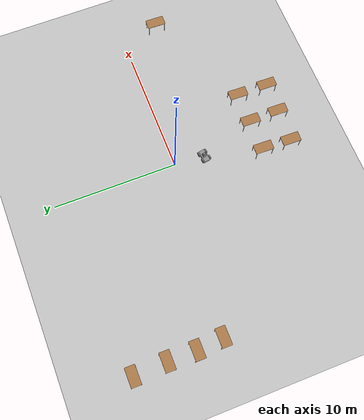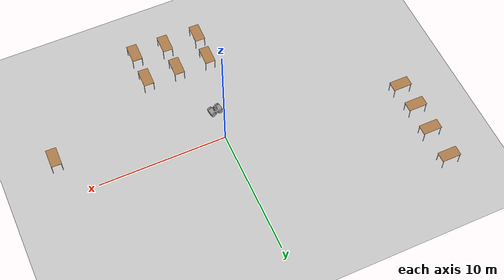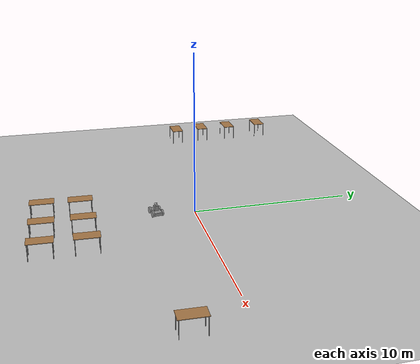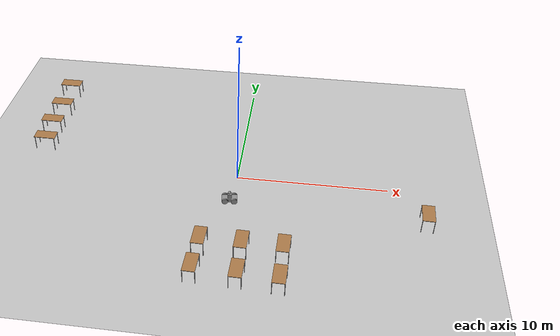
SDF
<sdf version="1.6">
 <world name="default">
  <model name="ground_plane">
   <static>1</static>
   <link name="link">
    <collision name="collision">
     <geometry><plane><normal>0 0 1</normal><size>100 100</size></plane></geometry>
     <surface>
      <contact><collide_bitmask>65535</collide_bitmask></contact>
      <friction><ode><mu>100</mu><mu2>50</mu2></ode></friction>
     </surface>
    </collision>
    <visual name="visual">
     <cast_shadows>0</cast_shadows>
     <geometry><plane><normal>0 0 1</normal><size>100 100</size></plane></geometry>
     <material>
      <script><uri>file://media/materials/scripts/gazebo.material</uri><name>Gazebo/Grey</name></script>
     </material>
    </visual>
   </link>
  </model>
  <model name="robot_clone">
   <link name="link_0">
    <pose>0 0 -0.109999 0 -0 0</pose>
    <inertial>
     <mass>1</mass>
     <inertia>
      <ixx>0.166667</ixx>
      <ixy>0</ixy>
      <ixz>0</ixz>
      <iyy>0.166667</iyy>
      <iyz>0</iyz>
      <izz>0.166667</izz>
     </inertia>
    </inertial>
    <visual name="visual">
     <geometry><box><size>1 0.5 0.2</size></box></geometry>
     <material>
      <lighting>1</lighting>
      <script><uri>file://media/materials/scripts/gazebo.material</uri><name>Gazebo/Grey</name></script>
      <shader type="pixel"><normal_map>__default__</normal_map></shader>
      <ambient>0.3 0.3 0.3 1</ambient>
      <diffuse>0.7 0.7 0.7 1</diffuse>
      <specular>0.01 0.01 0.01 1</specular>
      <emissive>0 0 0 1</emissive>
     </material>
    </visual>
    <collision name="collision">
     <geometry><box><size>1 0.5 0.2</size></box></geometry>
     <surface>
      <friction>
       <ode><mu>1</mu><mu2>1</mu2><fdir1>0 0 0</fdir1><slip1>0</slip1><slip2>0</slip2></ode>
       <torsional>
        <coefficient>1</coefficient>
        <patch_radius>0</patch_radius>
        <surface_radius>0</surface_radius>
        <use_patch_radius>1</use_patch_radius>
        <ode><slip>0</slip></ode>
       </torsional>
      </friction>
      <bounce><restitution_coefficient>0</restitution_coefficient><threshold>1e+06</threshold></bounce>
      <contact>
       <collide_without_contact>0</collide_without_contact>
       <collide_without_contact_bitmask>1</collide_without_contact_bitmask>
       <collide_bitmask>1</collide_bitmask>
       <ode>
        <soft_cfm>0</soft_cfm>
        <soft_erp>0.2</soft_erp>
        <kp>1e+13</kp>
        <kd>1</kd>
        <max_vel>0.01</max_vel>
        <min_depth>0</min_depth>
       </ode>
       <bullet>
        <split_impulse>1</split_impulse>
        <split_impulse_penetration_threshold>-0.01</split_impulse_penetration_threshold>
        <soft_cfm>0</soft_cfm>
        <soft_erp>0.2</soft_erp>
        <kp>1e+13</kp>
        <kd>1</kd>
       </bullet>
      </contact>
     </surface>
    </collision>
   </link>
   <link name="link_1">
    <pose>-0.3 -0.300019 -0.090004 1.5707 -0 0</pose>
    <inertial>
     <mass>1</mass>
     <inertia><ixx>0.145833</ixx><ixy>0</ixy><ixz>0</ixz><iyy>0.145833</iyy><iyz>0</iyz><izz>0.125</izz></inertia>
    </inertial>
    <visual name="visual">
     <geometry><cylinder><radius>0.2</radius><length>0.1</length></cylinder></geometry>
     <material>
      <lighting>1</lighting>
      <script><uri>file://media/materials/scripts/gazebo.material</uri><name>Gazebo/Grey</name></script>
      <shader type="pixel"><normal_map>__default__</normal_map></shader>
      <ambient>0.3 0.3 0.3 1</ambient>
      <diffuse>0.7 0.7 0.7 1</diffuse>
      <specular>0.01 0.01 0.01 1</specular>
      <emissive>0 0 0 1</emissive>
     </material>
    </visual>
    <collision name="collision">
     <geometry><cylinder><radius>0.2</radius><length>0.1</length></cylinder></geometry>
     <surface>
      <friction>
       <ode><mu>1</mu><mu2>1</mu2><fdir1>0 0 0</fdir1><slip1>0</slip1><slip2>0</slip2></ode>
       <torsional>
        <coefficient>1</coefficient>
        <patch_radius>0</patch_radius>
        <surface_radius>0</surface_radius>
        <use_patch_radius>1</use_patch_radius>
        <ode><slip>0</slip></ode>
       </torsional>
      </friction>
      <bounce><restitution_coefficient>0</restitution_coefficient><threshold>1e+06</threshold></bounce>
      <contact>
       <collide_without_contact>0</collide_without_contact>
       <collide_without_contact_bitmask>1</collide_without_contact_bitmask>
       <collide_bitmask>1</collide_bitmask>
       <ode>
        <soft_cfm>0</soft_cfm>
        <soft_erp>0.2</soft_erp>
        <kp>1e+13</kp>
        <kd>1</kd>
        <max_vel>0.01</max_vel>
        <min_depth>0</min_depth>
       </ode>
       <bullet>
        <split_impulse>1</split_impulse>
        <split_impulse_penetration_threshold>-0.01</split_impulse_penetration_threshold>
        <soft_cfm>0</soft_cfm>
        <soft_erp>0.2</soft_erp>
        <kp>1e+13</kp>
        <kd>1</kd>
       </bullet>
      </contact>
     </surface>
    </collision>
   </link>
   <link name="link_1_clone">
    <pose>-0.3 0.300019 -0.109999 1.5707 -0 0</pose>
    <inertial>
     <mass>1</mass>
     <inertia><ixx>0.145833</ixx><ixy>0</ixy><ixz>0</ixz><iyy>0.145833</iyy><iyz>0</iyz><izz>0.125</izz></inertia>
    </inertial>
    <visual name="visual">
     <geometry><cylinder><radius>0.2</radius><length>0.1</length></cylinder></geometry>
     <material>
      <lighting>1</lighting>
      <script><uri>file://media/materials/scripts/gazebo.material</uri><name>Gazebo/Grey</name></script>
      <shader type="pixel"><normal_map>__default__</normal_map></shader>
      <ambient>0.3 0.3 0.3 1</ambient>
      <diffuse>0.7 0.7 0.7 1</diffuse>
      <specular>0.01 0.01 0.01 1</specular>
      <emissive>0 0 0 1</emissive>
     </material>
    </visual>
    <collision name="collision">
     <geometry><cylinder><radius>0.2</radius><length>0.1</length></cylinder></geometry>
     <surface>
      <friction>
       <ode><mu>1</mu><mu2>1</mu2><fdir1>0 0 0</fdir1><slip1>0</slip1><slip2>0</slip2></ode>
       <torsional>
        <coefficient>1</coefficient>
        <patch_radius>0</patch_radius>
        <surface_radius>0</surface_radius>
        <use_patch_radius>1</use_patch_radius>
        <ode><slip>0</slip></ode>
       </torsional>
      </friction>
      <bounce><restitution_coefficient>0</restitution_coefficient><threshold>1e+06</threshold></bounce>
      <contact>
       <collide_without_contact>0</collide_without_contact>
       <collide_without_contact_bitmask>1</collide_without_contact_bitmask>
       <collide_bitmask>1</collide_bitmask>
       <ode>
        <soft_cfm>0</soft_cfm>
        <soft_erp>0.2</soft_erp>
        <kp>1e+13</kp>
        <kd>1</kd>
        <max_vel>0.01</max_vel>
        <min_depth>0</min_depth>
       </ode>
       <bullet>
        <split_impulse>1</split_impulse>
        <split_impulse_penetration_threshold>-0.01</split_impulse_penetration_threshold>
        <soft_cfm>0</soft_cfm>
        <soft_erp>0.2</soft_erp>
        <kp>1e+13</kp>
        <kd>1</kd>
       </bullet>
      </contact>
     </surface>
    </collision>
   </link>
   <link name="link_1_clone_clone">
    <pose>0.3 -0.300019 -0.109999 1.5707 -0 0</pose>
    <inertial>
     <mass>1</mass>
     <inertia><ixx>0.145833</ixx><ixy>0</ixy><ixz>0</ixz><iyy>0.145833</iyy><iyz>0</iyz><izz>0.125</izz></inertia>
    </inertial>
    <visual name="visual">
     <geometry><cylinder><radius>0.2</radius><length>0.1</length></cylinder></geometry>
     <material>
      <lighting>1</lighting>
      <script><uri>file://media/materials/scripts/gazebo.material</uri><name>Gazebo/Grey</name></script>
      <shader type="pixel"><normal_map>__default__</normal_map></shader>
      <ambient>0.3 0.3 0.3 1</ambient>
      <diffuse>0.7 0.7 0.7 1</diffuse>
      <specular>0.01 0.01 0.01 1</specular>
      <emissive>0 0 0 1</emissive>
     </material>
    </visual>
    <collision name="collision">
     <geometry><cylinder><radius>0.2</radius><length>0.1</length></cylinder></geometry>
     <surface>
      <friction>
       <ode><mu>1</mu><mu2>1</mu2><fdir1>0 0 0</fdir1><slip1>0</slip1><slip2>0</slip2></ode>
       <torsional>
        <coefficient>1</coefficient>
        <patch_radius>0</patch_radius>
        <surface_radius>0</surface_radius>
        <use_patch_radius>1</use_patch_radius>
        <ode><slip>0</slip></ode>
       </torsional>
      </friction>
      <bounce><restitution_coefficient>0</restitution_coefficient><threshold>1e+06</threshold></bounce>
      <contact>
       <collide_without_contact>0</collide_without_contact>
       <collide_without_contact_bitmask>1</collide_without_contact_bitmask>
       <collide_bitmask>1</collide_bitmask>
       <ode>
        <soft_cfm>0</soft_cfm>
        <soft_erp>0.2</soft_erp>
        <kp>1e+13</kp>
        <kd>1</kd>
        <max_vel>0.01</max_vel>
        <min_depth>0</min_depth>
       </ode>
       <bullet>
        <split_impulse>1</split_impulse>
        <split_impulse_penetration_threshold>-0.01</split_impulse_penetration_threshold>
        <soft_cfm>0</soft_cfm>
        <soft_erp>0.2</soft_erp>
        <kp>1e+13</kp>
        <kd>1</kd>
       </bullet>
      </contact>
     </surface>
    </collision>
   </link>
   <link name="link_1_clone_clone_clone">
    <pose>0.3 0.300019 -0.109999 1.5707 -0 0</pose>
    <inertial>
     <mass>1</mass>
     <inertia><ixx>0.145833</ixx><ixy>0</ixy><ixz>0</ixz><iyy>0.145833</iyy><iyz>0</iyz><izz>0.125</izz></inertia>
    </inertial>
    <visual name="visual">
     <geometry><cylinder><radius>0.2</radius><length>0.1</length></cylinder></geometry>
     <material>
      <lighting>1</lighting>
      <script><uri>file://media/materials/scripts/gazebo.material</uri><name>Gazebo/Grey</name></script>
      <shader type="pixel"><normal_map>__default__</normal_map></shader>
      <ambient>0.3 0.3 0.3 1</ambient>
      <diffuse>0.7 0.7 0.7 1</diffuse>
      <specular>0.01 0.01 0.01 1</specular>
      <emissive>0 0 0 1</emissive>
     </material>
    </visual>
    <collision name="collision">
     <geometry><cylinder><radius>0.2</radius><length>0.1</length></cylinder></geometry>
     <surface>
      <friction>
       <ode><mu>1</mu><mu2>1</mu2><fdir1>0 0 0</fdir1><slip1>0</slip1><slip2>0</slip2></ode>
       <torsional>
        <coefficient>1</coefficient>
        <patch_radius>0</patch_radius>
        <surface_radius>0</surface_radius>
        <use_patch_radius>1</use_patch_radius>
        <ode><slip>0</slip></ode>
       </torsional>
      </friction>
      <bounce><restitution_coefficient>0</restitution_coefficient><threshold>1e+06</threshold></bounce>
      <contact>
       <collide_without_contact>0</collide_without_contact>
       <collide_without_contact_bitmask>1</collide_without_contact_bitmask>
       <collide_bitmask>1</collide_bitmask>
       <ode>
        <soft_cfm>0</soft_cfm>
        <soft_erp>0.2</soft_erp>
        <kp>1e+13</kp>
        <kd>1</kd>
        <max_vel>0.01</max_vel>
        <min_depth>0</min_depth>
       </ode>
       <bullet>
        <split_impulse>1</split_impulse>
        <split_impulse_penetration_threshold>-0.01</split_impulse_penetration_threshold>
        <soft_cfm>0</soft_cfm>
        <soft_erp>0.2</soft_erp>
        <kp>1e+13</kp>
        <kd>1</kd>
       </bullet>
      </contact>
     </surface>
    </collision>
   </link>
   <link name="link_2">
    <pose>-0 0 0.140001 0 -0 0</pose>
    <inertial>
     <mass>1</mass>
     <inertia>
      <ixx>0.166667</ixx>
      <ixy>0</ixy>
      <ixz>0</ixz>
      <iyy>0.166667</iyy>
      <iyz>0</iyz>
      <izz>0.166667</izz>
     </inertia>
    </inertial>
    <visual name="visual">
     <geometry><box><size>0.25 0.25 0.3</size></box></geometry>
     <material>
      <lighting>1</lighting>
      <script><uri>file://media/materials/scripts/gazebo.material</uri><name>Gazebo/Grey</name></script>
      <shader type="pixel"><normal_map>__default__</normal_map></shader>
      <ambient>0.3 0.3 0.3 1</ambient>
      <diffuse>0.7 0.7 0.7 1</diffuse>
      <specular>0.01 0.01 0.01 1</specular>
      <emissive>0 0 0 1</emissive>
     </material>
    </visual>
    <collision name="collision">
     <geometry><box><size>0.25 0.25 0.3</size></box></geometry>
     <surface>
      <friction>
       <ode><mu>1</mu><mu2>1</mu2><fdir1>0 0 0</fdir1><slip1>0</slip1><slip2>0</slip2></ode>
       <torsional>
        <coefficient>1</coefficient>
        <patch_radius>0</patch_radius>
        <surface_radius>0</surface_radius>
        <use_patch_radius>1</use_patch_radius>
        <ode><slip>0</slip></ode>
       </torsional>
      </friction>
      <bounce><restitution_coefficient>0</restitution_coefficient><threshold>1e+06</threshold></bounce>
      <contact>
       <collide_without_contact>0</collide_without_contact>
       <collide_without_contact_bitmask>1</collide_without_contact_bitmask>
       <collide_bitmask>1</collide_bitmask>
       <ode>
        <soft_cfm>0</soft_cfm>
        <soft_erp>0.2</soft_erp>
        <kp>1e+13</kp>
        <kd>1</kd>
        <max_vel>0.01</max_vel>
        <min_depth>0</min_depth>
       </ode>
       <bullet>
        <split_impulse>1</split_impulse>
        <split_impulse_penetration_threshold>-0.01</split_impulse_penetration_threshold>
        <soft_cfm>0</soft_cfm>
        <soft_erp>0.2</soft_erp>
        <kp>1e+13</kp>
        <kd>1</kd>
       </bullet>
      </contact>
     </surface>
    </collision>
   </link>
   <link name="link_3">
    <pose>-0 0 0.390001 0 -0 0</pose>
    <inertial>
     <mass>1</mass>
     <inertia><ixx>0.1</ixx><ixy>0</ixy><ixz>0</ixz><iyy>0.1</iyy><iyz>0</iyz><izz>0.1</izz></inertia>
    </inertial>
    <visual name="visual">
     <geometry><sphere><radius>0.1</radius></sphere></geometry>
     <material>
      <lighting>1</lighting>
      <script><uri>file://media/materials/scripts/gazebo.material</uri><name>Gazebo/Grey</name></script>
      <shader type="pixel"><normal_map>__default__</normal_map></shader>
      <ambient>0.3 0.3 0.3 1</ambient>
      <diffuse>0.7 0.7 0.7 1</diffuse>
      <specular>0.01 0.01 0.01 1</specular>
      <emissive>0 0 0 1</emissive>
     </material>
    </visual>
    <collision name="collision">
     <geometry><sphere><radius>0.1</radius></sphere></geometry>
     <surface>
      <friction>
       <ode><mu>1</mu><mu2>1</mu2><fdir1>0 0 0</fdir1><slip1>0</slip1><slip2>0</slip2></ode>
       <torsional>
        <coefficient>1</coefficient>
        <patch_radius>0</patch_radius>
        <surface_radius>0</surface_radius>
        <use_patch_radius>1</use_patch_radius>
        <ode><slip>0</slip></ode>
       </torsional>
      </friction>
      <bounce><restitution_coefficient>0</restitution_coefficient><threshold>1e+06</threshold></bounce>
      <contact>
       <collide_without_contact>0</collide_without_contact>
       <collide_without_contact_bitmask>1</collide_without_contact_bitmask>
       <collide_bitmask>1</collide_bitmask>
       <ode>
        <soft_cfm>0</soft_cfm>
        <soft_erp>0.2</soft_erp>
        <kp>1e+13</kp>
        <kd>1</kd>
        <max_vel>0.01</max_vel>
        <min_depth>0</min_depth>
       </ode>
       <bullet>
        <split_impulse>1</split_impulse>
        <split_impulse_penetration_threshold>-0.01</split_impulse_penetration_threshold>
        <soft_cfm>0</soft_cfm>
        <soft_erp>0.2</soft_erp>
        <kp>1e+13</kp>
        <kd>1</kd>
       </bullet>
      </contact>
     </surface>
    </collision>
   </link>
   <joint name="link_0_JOINT_0_0" type="fixed">
    <parent>link_0</parent>
    <child>link_2</child>
    <physics>
     <ode><limit><cfm>0</cfm><erp>0.2</erp></limit><suspension><cfm>0</cfm><erp>0.2</erp></suspension></ode>
    </physics>
   </joint>
   <joint name="link_0_JOINT_0" type="revolute">
    <parent>link_0</parent>
    <child>link_1</child>
    <axis>
     <xyz>0 0 1</xyz>
     <use_parent_model_frame>0</use_parent_model_frame>
     <limit>
      <lower>-1.79769e+308</lower>
      <upper>1.79769e+308</upper>
      <effort>-1</effort>
      <velocity>-1</velocity>
     </limit>
     <dynamics>
      <spring_reference>0</spring_reference>
      <spring_stiffness>0</spring_stiffness>
      <damping>0</damping>
      <friction>0</friction>
     </dynamics>
    </axis>
    <physics>
     <ode><limit><cfm>0</cfm><erp>0.2</erp></limit><suspension><cfm>0</cfm><erp>0.2</erp></suspension></ode>
    </physics>
   </joint>
   <joint name="link_0_JOINT_1" type="revolute">
    <parent>link_0</parent>
    <child>link_1</child>
    <axis>
     <xyz>0 0 1</xyz>
     <use_parent_model_frame>0</use_parent_model_frame>
     <limit>
      <lower>-1.79769e+308</lower>
      <upper>1.79769e+308</upper>
      <effort>-1</effort>
      <velocity>-1</velocity>
     </limit>
     <dynamics>
      <spring_reference>0</spring_reference>
      <spring_stiffness>0</spring_stiffness>
      <damping>0</damping>
      <friction>0</friction>
     </dynamics>
    </axis>
    <physics>
     <ode><limit><cfm>0</cfm><erp>0.2</erp></limit><suspension><cfm>0</cfm><erp>0.2</erp></suspension></ode>
    </physics>
   </joint>
   <joint name="link_0_JOINT_2" type="revolute">
    <parent>link_0</parent>
    <child>link_1_clone</child>
    <axis>
     <xyz>0 0 -1</xyz>
     <use_parent_model_frame>0</use_parent_model_frame>
     <limit>
      <lower>-1.79769e+308</lower>
      <upper>1.79769e+308</upper>
      <effort>-1</effort>
      <velocity>-1</velocity>
     </limit>
     <dynamics>
      <spring_reference>0</spring_reference>
      <spring_stiffness>0</spring_stiffness>
      <damping>0</damping>
      <friction>0</friction>
     </dynamics>
    </axis>
    <physics>
     <ode><limit><cfm>0</cfm><erp>0.2</erp></limit><suspension><cfm>0</cfm><erp>0.2</erp></suspension></ode>
    </physics>
   </joint>
   <joint name="link_0_JOINT_3" type="revolute">
    <parent>link_0</parent>
    <child>link_1_clone_clone</child>
    <axis>
     <xyz>0 0 1</xyz>
     <use_parent_model_frame>0</use_parent_model_frame>
     <limit>
      <lower>-1.79769e+308</lower>
      <upper>1.79769e+308</upper>
      <effort>-1</effort>
      <velocity>-1</velocity>
     </limit>
     <dynamics>
      <spring_reference>0</spring_reference>
      <spring_stiffness>0</spring_stiffness>
      <damping>0</damping>
      <friction>0</friction>
     </dynamics>
    </axis>
    <physics>
     <ode><limit><cfm>0</cfm><erp>0.2</erp></limit><suspension><cfm>0</cfm><erp>0.2</erp></suspension></ode>
    </physics>
   </joint>
   <joint name="link_0_JOINT_4" type="revolute">
    <parent>link_0</parent>
    <child>link_1_clone_clone_clone</child>
    <axis>
     <xyz>0 0 -1</xyz>
     <use_parent_model_frame>0</use_parent_model_frame>
     <limit>
      <lower>-1.79769e+308</lower>
      <upper>1.79769e+308</upper>
      <effort>-1</effort>
      <velocity>-1</velocity>
     </limit>
     <dynamics>
      <spring_reference>0</spring_reference>
      <spring_stiffness>0</spring_stiffness>
      <damping>0</damping>
      <friction>0</friction>
     </dynamics>
    </axis>
    <physics>
     <ode><limit><cfm>0</cfm><erp>0.2</erp></limit><suspension><cfm>0</cfm><erp>0.2</erp></suspension></ode>
    </physics>
   </joint>
   <joint name="link_2_JOINT_5" type="ball">
    <parent>link_2</parent>
    <child>link_3</child>
    <physics>
     <ode><limit><cfm>0</cfm><erp>0.2</erp></limit><suspension><cfm>0</cfm><erp>0.2</erp></suspension></ode>
    </physics>
   </joint>
   <static>0</static>
   <pose>-0.223224 -2.43516 0.309998 9.9e-05 -0.000105 0.146424</pose>
  </model>
  <model name="robot_0">
   <model name="table">
    <static>1</static>
    <link name="link">
     <collision name="surface">
      <pose>0 0 1 0 -0 0</pose>
      <geometry><box><size>1.5 0.8 0.03</size></box></geometry>
      <surface><friction><ode><mu>0.6</mu><mu2>0.6</mu2></ode></friction></surface>
     </collision>
     <visual name="visual1">
      <pose>0 0 1 0 -0 0</pose>
      <geometry><box><size>1.5 0.8 0.03</size></box></geometry>
      <material>
       <script><uri>file://media/materials/scripts/gazebo.material</uri><name>Gazebo/Wood</name></script>
      </material>
     </visual>
     <collision name="front_left_leg">
      <pose>0.68 0.38 0.5 0 -0 0</pose>
      <geometry><cylinder><radius>0.02</radius><length>1</length></cylinder></geometry>
     </collision>
     <visual name="front_left_leg">
      <pose>0.68 0.38 0.5 0 -0 0</pose>
      <geometry><cylinder><radius>0.02</radius><length>1</length></cylinder></geometry>
      <material>
       <script><uri>file://media/materials/scripts/gazebo.material</uri><name>Gazebo/Grey</name></script>
      </material>
     </visual>
     <collision name="front_right_leg">
      <pose>0.68 -0.38 0.5 0 -0 0</pose>
      <geometry><cylinder><radius>0.02</radius><length>1</length></cylinder></geometry>
     </collision>
     <visual name="front_right_leg">
      <pose>0.68 -0.38 0.5 0 -0 0</pose>
      <geometry><cylinder><radius>0.02</radius><length>1</length></cylinder></geometry>
      <material>
       <script><uri>file://media/materials/scripts/gazebo.material</uri><name>Gazebo/Grey</name></script>
      </material>
     </visual>
     <collision name="back_right_leg">
      <pose>-0.68 -0.38 0.5 0 -0 0</pose>
      <geometry><cylinder><radius>0.02</radius><length>1</length></cylinder></geometry>
     </collision>
     <visual name="back_right_leg">
      <pose>-0.68 -0.38 0.5 0 -0 0</pose>
      <geometry><cylinder><radius>0.02</radius><length>1</length></cylinder></geometry>
      <material>
       <script><uri>file://media/materials/scripts/gazebo.material</uri><name>Gazebo/Grey</name></script>
      </material>
     </visual>
     <collision name="back_left_leg">
      <pose>-0.68 0.38 0.5 0 -0 0</pose>
      <geometry><cylinder><radius>0.02</radius><length>1</length></cylinder></geometry>
     </collision>
     <visual name="back_left_leg">
      <pose>-0.68 0.38 0.5 0 -0 0</pose>
      <geometry><cylinder><radius>0.02</radius><length>1</length></cylinder></geometry>
      <material>
       <script><uri>file://media/materials/scripts/gazebo.material</uri><name>Gazebo/Grey</name></script>
      </material>
     </visual>
    </link>
    <pose>-10.5095 4.55526 0 0 -0 0</pose>
   </model>
   <model name="table_clone">
    <static>1</static>
    <link name="link">
     <collision name="surface">
      <pose>0 0 1 0 -0 0</pose>
      <geometry><box><size>1.5 0.8 0.03</size></box></geometry>
      <surface><friction><ode><mu>0.6</mu><mu2>0.6</mu2></ode></friction></surface>
     </collision>
     <visual name="visual1">
      <pose>0 0 1 0 -0 0</pose>
      <geometry><box><size>1.5 0.8 0.03</size></box></geometry>
      <material>
       <script><uri>file://media/materials/scripts/gazebo.material</uri><name>Gazebo/Wood</name></script>
      </material>
     </visual>
     <collision name="front_left_leg">
      <pose>0.68 0.38 0.5 0 -0 0</pose>
      <geometry><cylinder><radius>0.02</radius><length>1</length></cylinder></geometry>
     </collision>
     <visual name="front_left_leg">
      <pose>0.68 0.38 0.5 0 -0 0</pose>
      <geometry><cylinder><radius>0.02</radius><length>1</length></cylinder></geometry>
      <material>
       <script><uri>file://media/materials/scripts/gazebo.material</uri><name>Gazebo/Grey</name></script>
      </material>
     </visual>
     <collision name="front_right_leg">
      <pose>0.68 -0.38 0.5 0 -0 0</pose>
      <geometry><cylinder><radius>0.02</radius><length>1</length></cylinder></geometry>
     </collision>
     <visual name="front_right_leg">
      <pose>0.68 -0.38 0.5 0 -0 0</pose>
      <geometry><cylinder><radius>0.02</radius><length>1</length></cylinder></geometry>
      <material>
       <script><uri>file://media/materials/scripts/gazebo.material</uri><name>Gazebo/Grey</name></script>
      </material>
     </visual>
     <collision name="back_right_leg">
      <pose>-0.68 -0.38 0.5 0 -0 0</pose>
      <geometry><cylinder><radius>0.02</radius><length>1</length></cylinder></geometry>
     </collision>
     <visual name="back_right_leg">
      <pose>-0.68 -0.38 0.5 0 -0 0</pose>
      <geometry><cylinder><radius>0.02</radius><length>1</length></cylinder></geometry>
      <material>
       <script><uri>file://media/materials/scripts/gazebo.material</uri><name>Gazebo/Grey</name></script>
      </material>
     </visual>
     <collision name="back_left_leg">
      <pose>-0.68 0.38 0.5 0 -0 0</pose>
      <geometry><cylinder><radius>0.02</radius><length>1</length></cylinder></geometry>
     </collision>
     <visual name="back_left_leg">
      <pose>-0.68 0.38 0.5 0 -0 0</pose>
      <geometry><cylinder><radius>0.02</radius><length>1</length></cylinder></geometry>
      <material>
       <script><uri>file://media/materials/scripts/gazebo.material</uri><name>Gazebo/Grey</name></script>
      </material>
     </visual>
    </link>
    <pose>-10.68 6.63716 0 0 -0 0</pose>
   </model>
   <model name="table_clone_0">
    <static>1</static>
    <link name="link">
     <collision name="surface">
      <pose>0 0 1 0 -0 0</pose>
      <geometry><box><size>1.5 0.8 0.03</size></box></geometry>
      <surface><friction><ode><mu>0.6</mu><mu2>0.6</mu2></ode></friction></surface>
     </collision>
     <visual name="visual1">
      <pose>0 0 1 0 -0 0</pose>
      <geometry><box><size>1.5 0.8 0.03</size></box></geometry>
      <material>
       <script><uri>file://media/materials/scripts/gazebo.material</uri><name>Gazebo/Wood</name></script>
      </material>
     </visual>
     <collision name="front_left_leg">
      <pose>0.68 0.38 0.5 0 -0 0</pose>
      <geometry><cylinder><radius>0.02</radius><length>1</length></cylinder></geometry>
     </collision>
     <visual name="front_left_leg">
      <pose>0.68 0.38 0.5 0 -0 0</pose>
      <geometry><cylinder><radius>0.02</radius><length>1</length></cylinder></geometry>
      <material>
       <script><uri>file://media/materials/scripts/gazebo.material</uri><name>Gazebo/Grey</name></script>
      </material>
     </visual>
     <collision name="front_right_leg">
      <pose>0.68 -0.38 0.5 0 -0 0</pose>
      <geometry><cylinder><radius>0.02</radius><length>1</length></cylinder></geometry>
     </collision>
     <visual name="front_right_leg">
      <pose>0.68 -0.38 0.5 0 -0 0</pose>
      <geometry><cylinder><radius>0.02</radius><length>1</length></cylinder></geometry>
      <material>
       <script><uri>file://media/materials/scripts/gazebo.material</uri><name>Gazebo/Grey</name></script>
      </material>
     </visual>
     <collision name="back_right_leg">
      <pose>-0.68 -0.38 0.5 0 -0 0</pose>
      <geometry><cylinder><radius>0.02</radius><length>1</length></cylinder></geometry>
     </collision>
     <visual name="back_right_leg">
      <pose>-0.68 -0.38 0.5 0 -0 0</pose>
      <geometry><cylinder><radius>0.02</radius><length>1</length></cylinder></geometry>
      <material>
       <script><uri>file://media/materials/scripts/gazebo.material</uri><name>Gazebo/Grey</name></script>
      </material>
     </visual>
     <collision name="back_left_leg">
      <pose>-0.68 0.38 0.5 0 -0 0</pose>
      <geometry><cylinder><radius>0.02</radius><length>1</length></cylinder></geometry>
     </collision>
     <visual name="back_left_leg">
      <pose>-0.68 0.38 0.5 0 -0 0</pose>
      <geometry><cylinder><radius>0.02</radius><length>1</length></cylinder></geometry>
      <material>
       <script><uri>file://media/materials/scripts/gazebo.material</uri><name>Gazebo/Grey</name></script>
      </material>
     </visual>
    </link>
    <pose>-10.6483 8.89565 0 0 -0 0</pose>
   </model>
   <model name="table_clone_1">
    <static>1</static>
    <link name="link">
     <collision name="surface">
      <pose>0 0 1 0 -0 0</pose>
      <geometry><box><size>1.5 0.8 0.03</size></box></geometry>
      <surface><friction><ode><mu>0.6</mu><mu2>0.6</mu2></ode></friction></surface>
     </collision>
     <visual name="visual1">
      <pose>0 0 1 0 -0 0</pose>
      <geometry><box><size>1.5 0.8 0.03</size></box></geometry>
      <material>
       <script><uri>file://media/materials/scripts/gazebo.material</uri><name>Gazebo/Wood</name></script>
      </material>
     </visual>
     <collision name="front_left_leg">
      <pose>0.68 0.38 0.5 0 -0 0</pose>
      <geometry><cylinder><radius>0.02</radius><length>1</length></cylinder></geometry>
     </collision>
     <visual name="front_left_leg">
      <pose>0.68 0.38 0.5 0 -0 0</pose>
      <geometry><cylinder><radius>0.02</radius><length>1</length></cylinder></geometry>
      <material>
       <script><uri>file://media/materials/scripts/gazebo.material</uri><name>Gazebo/Grey</name></script>
      </material>
     </visual>
     <collision name="front_right_leg">
      <pose>0.68 -0.38 0.5 0 -0 0</pose>
      <geometry><cylinder><radius>0.02</radius><length>1</length></cylinder></geometry>
     </collision>
     <visual name="front_right_leg">
      <pose>0.68 -0.38 0.5 0 -0 0</pose>
      <geometry><cylinder><radius>0.02</radius><length>1</length></cylinder></geometry>
      <material>
       <script><uri>file://media/materials/scripts/gazebo.material</uri><name>Gazebo/Grey</name></script>
      </material>
     </visual>
     <collision name="back_right_leg">
      <pose>-0.68 -0.38 0.5 0 -0 0</pose>
      <geometry><cylinder><radius>0.02</radius><length>1</length></cylinder></geometry>
     </collision>
     <visual name="back_right_leg">
      <pose>-0.68 -0.38 0.5 0 -0 0</pose>
      <geometry><cylinder><radius>0.02</radius><length>1</length></cylinder></geometry>
      <material>
       <script><uri>file://media/materials/scripts/gazebo.material</uri><name>Gazebo/Grey</name></script>
      </material>
     </visual>
     <collision name="back_left_leg">
      <pose>-0.68 0.38 0.5 0 -0 0</pose>
      <geometry><cylinder><radius>0.02</radius><length>1</length></cylinder></geometry>
     </collision>
     <visual name="back_left_leg">
      <pose>-0.68 0.38 0.5 0 -0 0</pose>
      <geometry><cylinder><radius>0.02</radius><length>1</length></cylinder></geometry>
      <material>
       <script><uri>file://media/materials/scripts/gazebo.material</uri><name>Gazebo/Grey</name></script>
      </material>
     </visual>
    </link>
    <pose>-10.7409 11.5113 0 0 -0 0</pose>
   </model>
   <model name="table_clone_2">
    <static>1</static>
    <link name="link">
     <collision name="surface">
      <pose>0 0 1 0 -0 0</pose>
      <geometry><box><size>1.5 0.8 0.03</size></box></geometry>
      <surface><friction><ode><mu>0.6</mu><mu2>0.6</mu2></ode></friction></surface>
     </collision>
     <visual name="visual1">
      <pose>0 0 1 0 -0 0</pose>
      <geometry><box><size>1.5 0.8 0.03</size></box></geometry>
      <material>
       <script><uri>file://media/materials/scripts/gazebo.material</uri><name>Gazebo/Wood</name></script>
      </material>
     </visual>
     <collision name="front_left_leg">
      <pose>0.68 0.38 0.5 0 -0 0</pose>
      <geometry><cylinder><radius>0.02</radius><length>1</length></cylinder></geometry>
     </collision>
     <visual name="front_left_leg">
      <pose>0.68 0.38 0.5 0 -0 0</pose>
      <geometry><cylinder><radius>0.02</radius><length>1</length></cylinder></geometry>
      <material>
       <script><uri>file://media/materials/scripts/gazebo.material</uri><name>Gazebo/Grey</name></script>
      </material>
     </visual>
     <collision name="front_right_leg">
      <pose>0.68 -0.38 0.5 0 -0 0</pose>
      <geometry><cylinder><radius>0.02</radius><length>1</length></cylinder></geometry>
     </collision>
     <visual name="front_right_leg">
      <pose>0.68 -0.38 0.5 0 -0 0</pose>
      <geometry><cylinder><radius>0.02</radius><length>1</length></cylinder></geometry>
      <material>
       <script><uri>file://media/materials/scripts/gazebo.material</uri><name>Gazebo/Grey</name></script>
      </material>
     </visual>
     <collision name="back_right_leg">
      <pose>-0.68 -0.38 0.5 0 -0 0</pose>
      <geometry><cylinder><radius>0.02</radius><length>1</length></cylinder></geometry>
     </collision>
     <visual name="back_right_leg">
      <pose>-0.68 -0.38 0.5 0 -0 0</pose>
      <geometry><cylinder><radius>0.02</radius><length>1</length></cylinder></geometry>
      <material>
       <script><uri>file://media/materials/scripts/gazebo.material</uri><name>Gazebo/Grey</name></script>
      </material>
     </visual>
     <collision name="back_left_leg">
      <pose>-0.68 0.38 0.5 0 -0 0</pose>
      <geometry><cylinder><radius>0.02</radius><length>1</length></cylinder></geometry>
     </collision>
     <visual name="back_left_leg">
      <pose>-0.68 0.38 0.5 0 -0 0</pose>
      <geometry><cylinder><radius>0.02</radius><length>1</length></cylinder></geometry>
      <material>
       <script><uri>file://media/materials/scripts/gazebo.material</uri><name>Gazebo/Grey</name></script>
      </material>
     </visual>
    </link>
    <pose>1.8297 -6.35647 0 0 -0 1.54687</pose>
   </model>
   <model name="table_clone_2_clone">
    <static>1</static>
    <link name="link">
     <collision name="surface">
      <pose>0 0 1 0 -0 0</pose>
      <geometry><box><size>1.5 0.8 0.03</size></box></geometry>
      <surface><friction><ode><mu>0.6</mu><mu2>0.6</mu2></ode></friction></surface>
     </collision>
     <visual name="visual1">
      <pose>0 0 1 0 -0 0</pose>
      <geometry><box><size>1.5 0.8 0.03</size></box></geometry>
      <material>
       <script><uri>file://media/materials/scripts/gazebo.material</uri><name>Gazebo/Wood</name></script>
      </material>
     </visual>
     <collision name="front_left_leg">
      <pose>0.68 0.38 0.5 0 -0 0</pose>
      <geometry><cylinder><radius>0.02</radius><length>1</length></cylinder></geometry>
     </collision>
     <visual name="front_left_leg">
      <pose>0.68 0.38 0.5 0 -0 0</pose>
      <geometry><cylinder><radius>0.02</radius><length>1</length></cylinder></geometry>
      <material>
       <script><uri>file://media/materials/scripts/gazebo.material</uri><name>Gazebo/Grey</name></script>
      </material>
     </visual>
     <collision name="front_right_leg">
      <pose>0.68 -0.38 0.5 0 -0 0</pose>
      <geometry><cylinder><radius>0.02</radius><length>1</length></cylinder></geometry>
     </collision>
     <visual name="front_right_leg">
      <pose>0.68 -0.38 0.5 0 -0 0</pose>
      <geometry><cylinder><radius>0.02</radius><length>1</length></cylinder></geometry>
      <material>
       <script><uri>file://media/materials/scripts/gazebo.material</uri><name>Gazebo/Grey</name></script>
      </material>
     </visual>
     <collision name="back_right_leg">
      <pose>-0.68 -0.38 0.5 0 -0 0</pose>
      <geometry><cylinder><radius>0.02</radius><length>1</length></cylinder></geometry>
     </collision>
     <visual name="back_right_leg">
      <pose>-0.68 -0.38 0.5 0 -0 0</pose>
      <geometry><cylinder><radius>0.02</radius><length>1</length></cylinder></geometry>
      <material>
       <script><uri>file://media/materials/scripts/gazebo.material</uri><name>Gazebo/Grey</name></script>
      </material>
     </visual>
     <collision name="back_left_leg">
      <pose>-0.68 0.38 0.5 0 -0 0</pose>
      <geometry><cylinder><radius>0.02</radius><length>1</length></cylinder></geometry>
     </collision>
     <visual name="back_left_leg">
      <pose>-0.68 0.38 0.5 0 -0 0</pose>
      <geometry><cylinder><radius>0.02</radius><length>1</length></cylinder></geometry>
      <material>
       <script><uri>file://media/materials/scripts/gazebo.material</uri><name>Gazebo/Grey</name></script>
      </material>
     </visual>
    </link>
    <pose>4.51926 -6.43961 0 0 -0 1.54687</pose>
   </model>
   <model name="table_clone_2_clone_clone">
    <static>1</static>
    <link name="link">
     <collision name="surface">
      <pose>0 0 1 0 -0 0</pose>
      <geometry><box><size>1.5 0.8 0.03</size></box></geometry>
      <surface><friction><ode><mu>0.6</mu><mu2>0.6</mu2></ode></friction></surface>
     </collision>
     <visual name="visual1">
      <pose>0 0 1 0 -0 0</pose>
      <geometry><box><size>1.5 0.8 0.03</size></box></geometry>
      <material>
       <script><uri>file://media/materials/scripts/gazebo.material</uri><name>Gazebo/Wood</name></script>
      </material>
     </visual>
     <collision name="front_left_leg">
      <pose>0.68 0.38 0.5 0 -0 0</pose>
      <geometry><cylinder><radius>0.02</radius><length>1</length></cylinder></geometry>
     </collision>
     <visual name="front_left_leg">
      <pose>0.68 0.38 0.5 0 -0 0</pose>
      <geometry><cylinder><radius>0.02</radius><length>1</length></cylinder></geometry>
      <material>
       <script><uri>file://media/materials/scripts/gazebo.material</uri><name>Gazebo/Grey</name></script>
      </material>
     </visual>
     <collision name="front_right_leg">
      <pose>0.68 -0.38 0.5 0 -0 0</pose>
      <geometry><cylinder><radius>0.02</radius><length>1</length></cylinder></geometry>
     </collision>
     <visual name="front_right_leg">
      <pose>0.68 -0.38 0.5 0 -0 0</pose>
      <geometry><cylinder><radius>0.02</radius><length>1</length></cylinder></geometry>
      <material>
       <script><uri>file://media/materials/scripts/gazebo.material</uri><name>Gazebo/Grey</name></script>
      </material>
     </visual>
     <collision name="back_right_leg">
      <pose>-0.68 -0.38 0.5 0 -0 0</pose>
      <geometry><cylinder><radius>0.02</radius><length>1</length></cylinder></geometry>
     </collision>
     <visual name="back_right_leg">
      <pose>-0.68 -0.38 0.5 0 -0 0</pose>
      <geometry><cylinder><radius>0.02</radius><length>1</length></cylinder></geometry>
      <material>
       <script><uri>file://media/materials/scripts/gazebo.material</uri><name>Gazebo/Grey</name></script>
      </material>
     </visual>
     <collision name="back_left_leg">
      <pose>-0.68 0.38 0.5 0 -0 0</pose>
      <geometry><cylinder><radius>0.02</radius><length>1</length></cylinder></geometry>
     </collision>
     <visual name="back_left_leg">
      <pose>-0.68 0.38 0.5 0 -0 0</pose>
      <geometry><cylinder><radius>0.02</radius><length>1</length></cylinder></geometry>
      <material>
       <script><uri>file://media/materials/scripts/gazebo.material</uri><name>Gazebo/Grey</name></script>
      </material>
     </visual>
    </link>
    <pose>7.01786 -6.5552 0 0 -0 1.54687</pose>
   </model>
   <model name="table_clone_2_clone_clone_clone">
    <static>1</static>
    <link name="link">
     <collision name="surface">
      <pose>0 0 1 0 -0 0</pose>
      <geometry><box><size>1.5 0.8 0.03</size></box></geometry>
      <surface><friction><ode><mu>0.6</mu><mu2>0.6</mu2></ode></friction></surface>
     </collision>
     <visual name="visual1">
      <pose>0 0 1 0 -0 0</pose>
      <geometry><box><size>1.5 0.8 0.03</size></box></geometry>
      <material>
       <script><uri>file://media/materials/scripts/gazebo.material</uri><name>Gazebo/Wood</name></script>
      </material>
     </visual>
     <collision name="front_left_leg">
      <pose>0.68 0.38 0.5 0 -0 0</pose>
      <geometry><cylinder><radius>0.02</radius><length>1</length></cylinder></geometry>
     </collision>
     <visual name="front_left_leg">
      <pose>0.68 0.38 0.5 0 -0 0</pose>
      <geometry><cylinder><radius>0.02</radius><length>1</length></cylinder></geometry>
      <material>
       <script><uri>file://media/materials/scripts/gazebo.material</uri><name>Gazebo/Grey</name></script>
      </material>
     </visual>
     <collision name="front_right_leg">
      <pose>0.68 -0.38 0.5 0 -0 0</pose>
      <geometry><cylinder><radius>0.02</radius><length>1</length></cylinder></geometry>
     </collision>
     <visual name="front_right_leg">
      <pose>0.68 -0.38 0.5 0 -0 0</pose>
      <geometry><cylinder><radius>0.02</radius><length>1</length></cylinder></geometry>
      <material>
       <script><uri>file://media/materials/scripts/gazebo.material</uri><name>Gazebo/Grey</name></script>
      </material>
     </visual>
     <collision name="back_right_leg">
      <pose>-0.68 -0.38 0.5 0 -0 0</pose>
      <geometry><cylinder><radius>0.02</radius><length>1</length></cylinder></geometry>
     </collision>
     <visual name="back_right_leg">
      <pose>-0.68 -0.38 0.5 0 -0 0</pose>
      <geometry><cylinder><radius>0.02</radius><length>1</length></cylinder></geometry>
      <material>
       <script><uri>file://media/materials/scripts/gazebo.material</uri><name>Gazebo/Grey</name></script>
      </material>
     </visual>
     <collision name="back_left_leg">
      <pose>-0.68 0.38 0.5 0 -0 0</pose>
      <geometry><cylinder><radius>0.02</radius><length>1</length></cylinder></geometry>
     </collision>
     <visual name="back_left_leg">
      <pose>-0.68 0.38 0.5 0 -0 0</pose>
      <geometry><cylinder><radius>0.02</radius><length>1</length></cylinder></geometry>
      <material>
       <script><uri>file://media/materials/scripts/gazebo.material</uri><name>Gazebo/Grey</name></script>
      </material>
     </visual>
    </link>
    <pose>1.93175 -4.04739 0 0 -0 1.54687</pose>
   </model>
   <model name="table_clone_2_clone_clone_clone_0">
    <static>1</static>
    <link name="link">
     <collision name="surface">
      <pose>0 0 1 0 -0 0</pose>
      <geometry><box><size>1.5 0.8 0.03</size></box></geometry>
      <surface><friction><ode><mu>0.6</mu><mu2>0.6</mu2></ode></friction></surface>
     </collision>
     <visual name="visual1">
      <pose>0 0 1 0 -0 0</pose>
      <geometry><box><size>1.5 0.8 0.03</size></box></geometry>
      <material>
       <script><uri>file://media/materials/scripts/gazebo.material</uri><name>Gazebo/Wood</name></script>
      </material>
     </visual>
     <collision name="front_left_leg">
      <pose>0.68 0.38 0.5 0 -0 0</pose>
      <geometry><cylinder><radius>0.02</radius><length>1</length></cylinder></geometry>
     </collision>
     <visual name="front_left_leg">
      <pose>0.68 0.38 0.5 0 -0 0</pose>
      <geometry><cylinder><radius>0.02</radius><length>1</length></cylinder></geometry>
      <material>
       <script><uri>file://media/materials/scripts/gazebo.material</uri><name>Gazebo/Grey</name></script>
      </material>
     </visual>
     <collision name="front_right_leg">
      <pose>0.68 -0.38 0.5 0 -0 0</pose>
      <geometry><cylinder><radius>0.02</radius><length>1</length></cylinder></geometry>
     </collision>
     <visual name="front_right_leg">
      <pose>0.68 -0.38 0.5 0 -0 0</pose>
      <geometry><cylinder><radius>0.02</radius><length>1</length></cylinder></geometry>
      <material>
       <script><uri>file://media/materials/scripts/gazebo.material</uri><name>Gazebo/Grey</name></script>
      </material>
     </visual>
     <collision name="back_right_leg">
      <pose>-0.68 -0.38 0.5 0 -0 0</pose>
      <geometry><cylinder><radius>0.02</radius><length>1</length></cylinder></geometry>
     </collision>
     <visual name="back_right_leg">
      <pose>-0.68 -0.38 0.5 0 -0 0</pose>
      <geometry><cylinder><radius>0.02</radius><length>1</length></cylinder></geometry>
      <material>
       <script><uri>file://media/materials/scripts/gazebo.material</uri><name>Gazebo/Grey</name></script>
      </material>
     </visual>
     <collision name="back_left_leg">
      <pose>-0.68 0.38 0.5 0 -0 0</pose>
      <geometry><cylinder><radius>0.02</radius><length>1</length></cylinder></geometry>
     </collision>
     <visual name="back_left_leg">
      <pose>-0.68 0.38 0.5 0 -0 0</pose>
      <geometry><cylinder><radius>0.02</radius><length>1</length></cylinder></geometry>
      <material>
       <script><uri>file://media/materials/scripts/gazebo.material</uri><name>Gazebo/Grey</name></script>
      </material>
     </visual>
    </link>
    <pose>4.49927 -4.0374 0 0 -0 1.54687</pose>
   </model>
   <model name="table_clone_2_clone_clone_clone_1">
    <static>1</static>
    <link name="link">
     <collision name="surface">
      <pose>0 0 1 0 -0 0</pose>
      <geometry><box><size>1.5 0.8 0.03</size></box></geometry>
      <surface><friction><ode><mu>0.6</mu><mu2>0.6</mu2></ode></friction></surface>
     </collision>
     <visual name="visual1">
      <pose>0 0 1 0 -0 0</pose>
      <geometry><box><size>1.5 0.8 0.03</size></box></geometry>
      <material>
       <script><uri>file://media/materials/scripts/gazebo.material</uri><name>Gazebo/Wood</name></script>
      </material>
     </visual>
     <collision name="front_left_leg">
      <pose>0.68 0.38 0.5 0 -0 0</pose>
      <geometry><cylinder><radius>0.02</radius><length>1</length></cylinder></geometry>
     </collision>
     <visual name="front_left_leg">
      <pose>0.68 0.38 0.5 0 -0 0</pose>
      <geometry><cylinder><radius>0.02</radius><length>1</length></cylinder></geometry>
      <material>
       <script><uri>file://media/materials/scripts/gazebo.material</uri><name>Gazebo/Grey</name></script>
      </material>
     </visual>
     <collision name="front_right_leg">
      <pose>0.68 -0.38 0.5 0 -0 0</pose>
      <geometry><cylinder><radius>0.02</radius><length>1</length></cylinder></geometry>
     </collision>
     <visual name="front_right_leg">
      <pose>0.68 -0.38 0.5 0 -0 0</pose>
      <geometry><cylinder><radius>0.02</radius><length>1</length></cylinder></geometry>
      <material>
       <script><uri>file://media/materials/scripts/gazebo.material</uri><name>Gazebo/Grey</name></script>
      </material>
     </visual>
     <collision name="back_right_leg">
      <pose>-0.68 -0.38 0.5 0 -0 0</pose>
      <geometry><cylinder><radius>0.02</radius><length>1</length></cylinder></geometry>
     </collision>
     <visual name="back_right_leg">
      <pose>-0.68 -0.38 0.5 0 -0 0</pose>
      <geometry><cylinder><radius>0.02</radius><length>1</length></cylinder></geometry>
      <material>
       <script><uri>file://media/materials/scripts/gazebo.material</uri><name>Gazebo/Grey</name></script>
      </material>
     </visual>
     <collision name="back_left_leg">
      <pose>-0.68 0.38 0.5 0 -0 0</pose>
      <geometry><cylinder><radius>0.02</radius><length>1</length></cylinder></geometry>
     </collision>
     <visual name="back_left_leg">
      <pose>-0.68 0.38 0.5 0 -0 0</pose>
      <geometry><cylinder><radius>0.02</radius><length>1</length></cylinder></geometry>
      <material>
       <script><uri>file://media/materials/scripts/gazebo.material</uri><name>Gazebo/Grey</name></script>
      </material>
     </visual>
    </link>
    <pose>7.03545 -4.02832 0 0 -0 1.54687</pose>
   </model>
   <model name="table_clone_2_clone_clone_clone_1_clone">
    <static>1</static>
    <link name="link">
     <collision name="surface">
      <pose>0 0 1 0 -0 0</pose>
      <geometry><box><size>1.5 0.8 0.03</size></box></geometry>
      <surface><friction><ode><mu>0.6</mu><mu2>0.6</mu2></ode></friction></surface>
     </collision>
     <visual name="visual1">
      <pose>0 0 1 0 -0 0</pose>
      <geometry><box><size>1.5 0.8 0.03</size></box></geometry>
      <material>
       <script><uri>file://media/materials/scripts/gazebo.material</uri><name>Gazebo/Wood</name></script>
      </material>
     </visual>
     <collision name="front_left_leg">
      <pose>0.68 0.38 0.5 0 -0 0</pose>
      <geometry><cylinder><radius>0.02</radius><length>1</length></cylinder></geometry>
     </collision>
     <visual name="front_left_leg">
      <pose>0.68 0.38 0.5 0 -0 0</pose>
      <geometry><cylinder><radius>0.02</radius><length>1</length></cylinder></geometry>
      <material>
       <script><uri>file://media/materials/scripts/gazebo.material</uri><name>Gazebo/Grey</name></script>
      </material>
     </visual>
     <collision name="front_right_leg">
      <pose>0.68 -0.38 0.5 0 -0 0</pose>
      <geometry><cylinder><radius>0.02</radius><length>1</length></cylinder></geometry>
     </collision>
     <visual name="front_right_leg">
      <pose>0.68 -0.38 0.5 0 -0 0</pose>
      <geometry><cylinder><radius>0.02</radius><length>1</length></cylinder></geometry>
      <material>
       <script><uri>file://media/materials/scripts/gazebo.material</uri><name>Gazebo/Grey</name></script>
      </material>
     </visual>
     <collision name="back_right_leg">
      <pose>-0.68 -0.38 0.5 0 -0 0</pose>
      <geometry><cylinder><radius>0.02</radius><length>1</length></cylinder></geometry>
     </collision>
     <visual name="back_right_leg">
      <pose>-0.68 -0.38 0.5 0 -0 0</pose>
      <geometry><cylinder><radius>0.02</radius><length>1</length></cylinder></geometry>
      <material>
       <script><uri>file://media/materials/scripts/gazebo.material</uri><name>Gazebo/Grey</name></script>
      </material>
     </visual>
     <collision name="back_left_leg">
      <pose>-0.68 0.38 0.5 0 -0 0</pose>
      <geometry><cylinder><radius>0.02</radius><length>1</length></cylinder></geometry>
     </collision>
     <visual name="back_left_leg">
      <pose>-0.68 0.38 0.5 0 -0 0</pose>
      <geometry><cylinder><radius>0.02</radius><length>1</length></cylinder></geometry>
      <material>
       <script><uri>file://media/materials/scripts/gazebo.material</uri><name>Gazebo/Grey</name></script>
      </material>
     </visual>
    </link>
    <pose>15.7454 -0.134941 0 0 -0 1.54687</pose>
   </model>
   <static>0</static>
   <pose>-3.4066 -2.88369 0 0 -0 0</pose>
  </model>
 </world>
</sdf>
